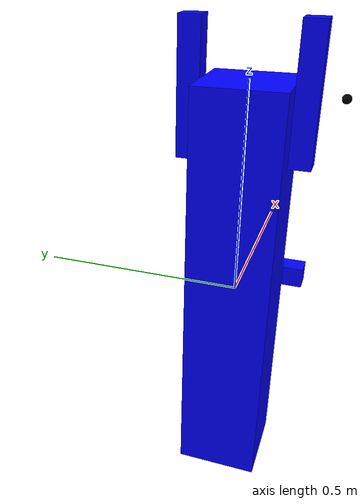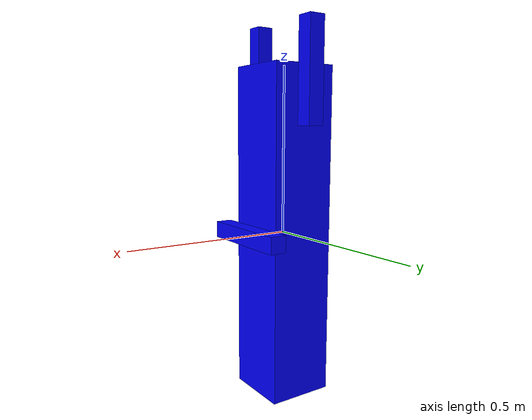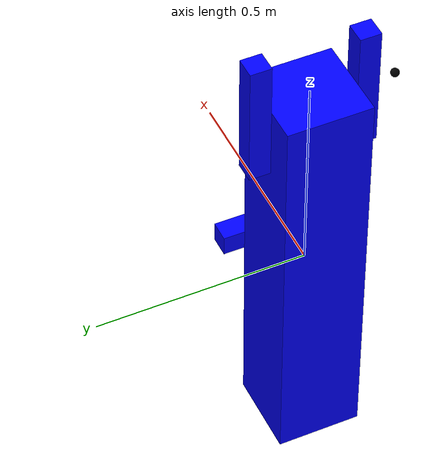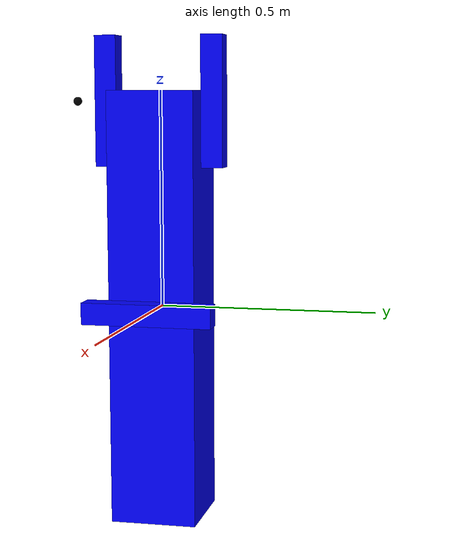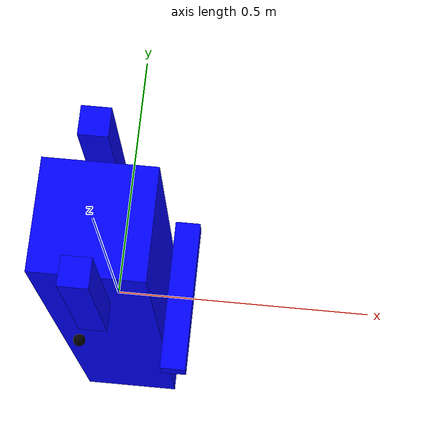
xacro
<?xml version="1.0"?>
<robot name="box_bot" xmlns:xacro="http://www.ros.org/wiki/xacro">

 <xacro:macro name="box_link" params="name length width height mass ixx iyy izz dx dy dz">
    <link name="${name}">
      <visual>
        <origin xyz="${dx} ${dy} ${dz}" rpy="0 0 0"/>
        <geometry>
          <box size="${length} ${width} ${height}"/>
        </geometry>
        <material name="blue">
          <color rgba="0 0 1 1"/>
        </material>
      </visual>
      <collision>
        <origin xyz="${dx} ${dy} ${dz}" rpy="0 0 0"/>
        <geometry>
          <box size="${length} ${width} ${height}"/>
        </geometry>
      </collision>
      <inertial>
        <origin xyz="${dx} ${dy} ${dz}" rpy="0 0 0"/>
        <mass value="${mass}"/>
        <inertia ixx="${ixx}" ixy="0.0" ixz="0.0"
                 iyy="${iyy}" iyz="0.0"
                 izz="${izz}"/>
      </inertial>
    </link>
  </xacro:macro>

  <!-- Base link -->
  <xacro:box_link name="base_link"
    length="0.2" width="0.2" height="1.0"
    mass="2000.0" ixx="100" iyy="100" izz="100"
    dx="0.0" dy="0.0" dz="0.0"/>

  <!-- Joint 1 -->
  <xacro:box_link name="link1" length="0.05" width="0.3" height="0.05" mass="0.1" ixx="0.01" iyy="0.01" izz="0.01" dx="0.0" dy="0.0" dz="0.025"/>
  <!-- Mover el centro del hijo desde el joint -->
  <joint name="joint1" type="revolute">
    <parent link="base_link"/>
    <child  link="link1"/>
    <origin xyz="0 0.1 0.475" rpy="-1.57 0 0"/>   <!-- Distancias desde el centro del padre -->
    <axis  xyz="0 0 1"/>
    <limit lower="-3.14" upper="3.14" effort="10.0" velocity="1.0"/>
    <dynamics damping="0.01"/>
  </joint>

  <!-- Joint 2 -->
  <xacro:box_link name="link2" length="0.05" width="0.3" height="0.05" mass="0.1" ixx="0.01" iyy="0.01" izz="0.01" dx="0.0" dy="0.0" dz="0.025"/>
  <!-- Mover el centro del hijo desde el joint -->
  <joint name="joint2" type="continuous">
    <parent link="base_link"/>
    <child  link="link2"/>
    <origin xyz="0 -0.1 0.475" rpy="1.57 0 0"/>   <!-- Distancias desde el centro del padre -->
    <axis  xyz="0 0 1"/>
    <dynamics damping="0.01"/>
  </joint>

  <!-- Joint 3 -->
  <xacro:box_link name="link3" length="0.05" width="0.3" height="0.05" mass="0.1" ixx="0.01" iyy="0.01" izz="0.01" dx="0.0" dy="0.0" dz="0.0"/>
  <!-- Mover el centro del hijo desde el joint -->
  <joint name="joint3" type="prismatic">
    <parent link="base_link"/>
    <child  link="link3"/>
    <origin xyz="0.125 0 0.0" rpy="0 0 0"/>   <!-- Distancias desde el centro del padre -->
    <axis  xyz="0 0 1"/>
    <limit lower="-0.475" upper="0.475" effort="50" velocity="0.1"/>
    <dynamics damping="0.01"/>
  </joint>

  <link name="led_link">
    <visual name="led_visual">
      <geometry>
        <sphere radius="0.01"/>
      </geometry>
      <material name="led_off">
        <color rgba="0.0 0.0 0.0 1.0"/>
      </material>
    </visual>
  </link>

  <joint name="led_joint" type="fixed">
    <parent link="link2"/>
    <child link="led_link"/>
    <origin xyz="0 0 0.1" rpy="0 0 0"/>
  </joint>

  <gazebo reference="led_link">
    <plugin name="led_color_plugin" filename="libled_color_plugin.so">
      <led_link>led_link</led_link>
    </plugin>
  </gazebo>

  <gazebo>
    <plugin name="wrench_plugin" filename="libwrench_plugin.so">
      <!-- Coincide con el nombre de tu link en el URDF -->
      <link_name>link3</link_name>
    </plugin>

    <plugin name="multi_wrench" filename="libMultiWrenchPlugin.so"> <!-- MultiWrenchPlugin es la librería a poner en el CMake-->
      <link_name1>link1</link_name1>
      <topic1>/link1/apply_wrench</topic1>
      <link_name2>link2</link_name2>
      <topic2>/link2/apply_wrench</topic2>
      <link_name3>link3</link_name3>
      <topic3>/link3/apply_wrench</topic3>
    </plugin>

    <plugin name="joint_control" filename="libjoint_control_plugin.so">
      <!-- Nombre exacto de la articulación URDF -->
      <joint_name>joint3</joint_name>
      <!-- Tópico para velocidad (Float64, en rad/s o m/s) -->
      <topic_velocity>/joint1/cmd_vel</topic_velocity>
      <!-- Tópico para esfuerzo (Float64, en Nm o N) -->
      <topic_effort>/joint1/cmd_effort</topic_effort>
      <!-- Opcional: límite de torque/force para el motor de velocidad -->
      <max_effort>100.0</max_effort>
    </plugin>

    <static>false</static>
  </gazebo>

</robot>
